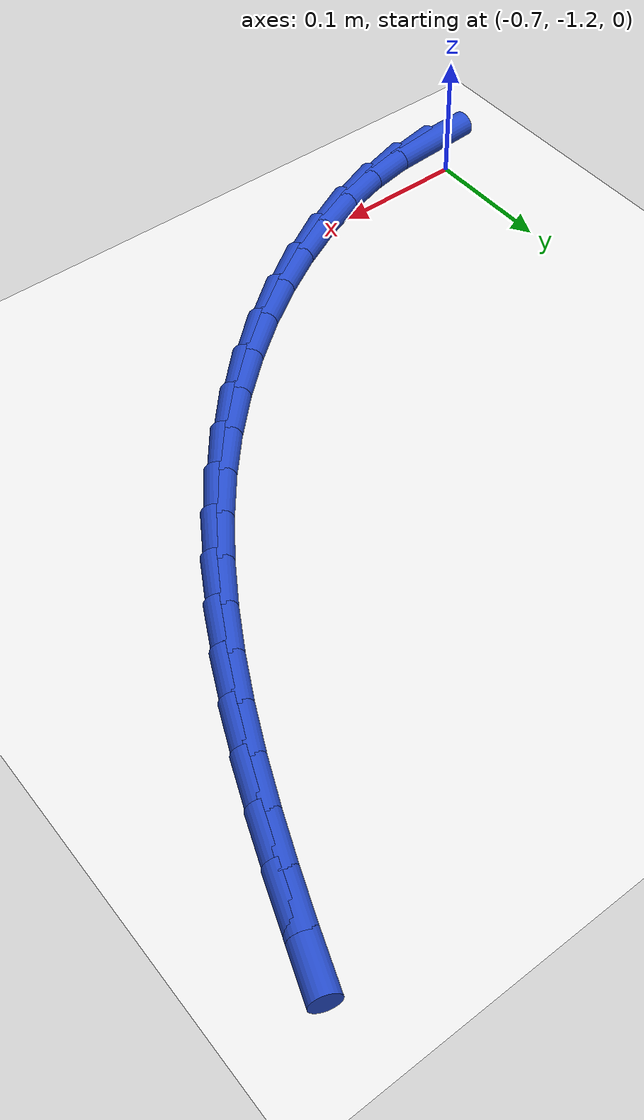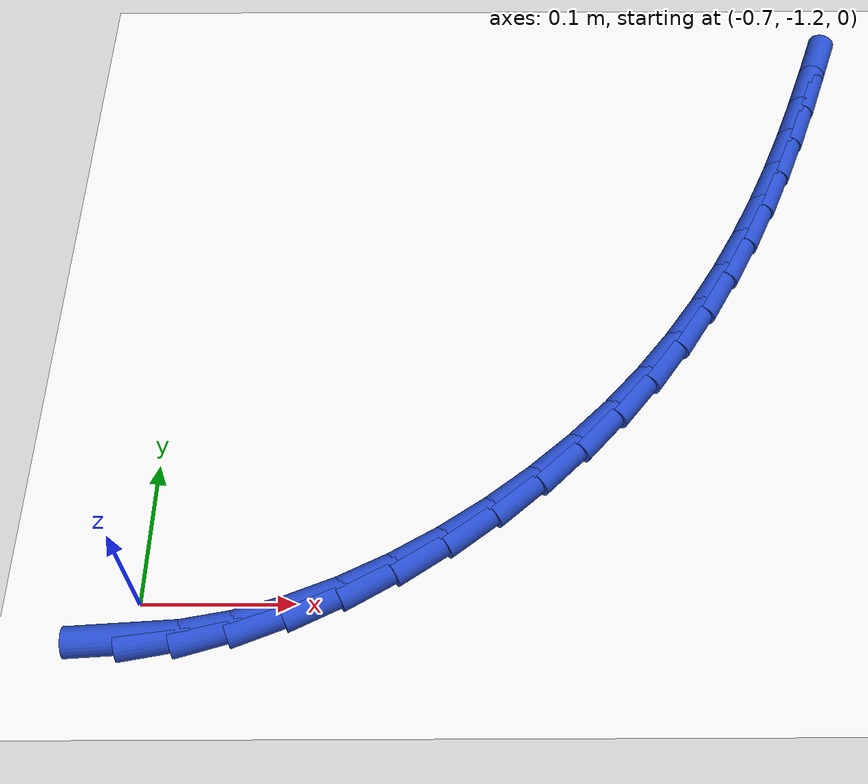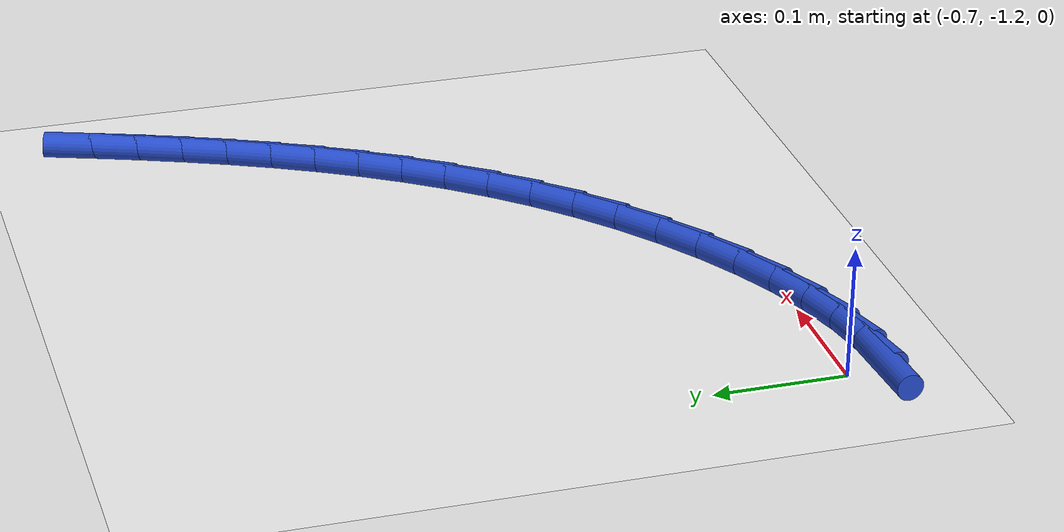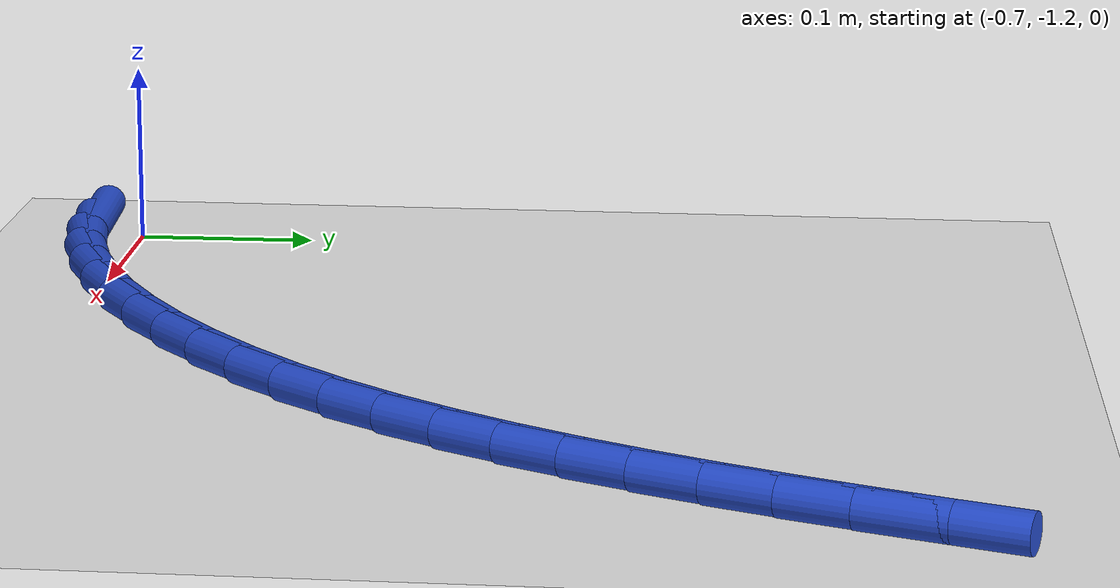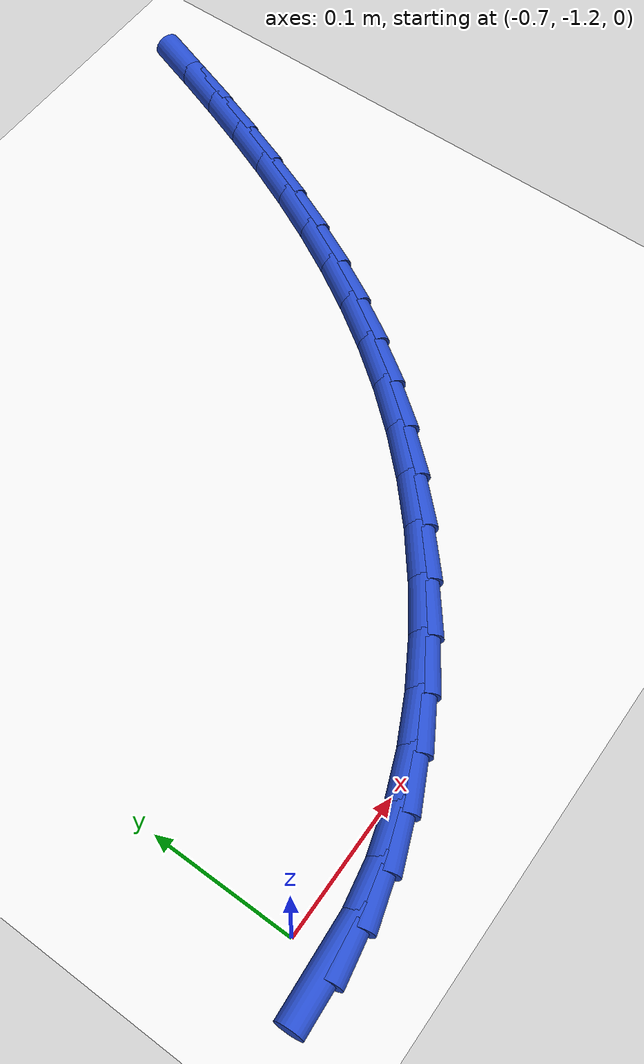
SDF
<sdf version="1.6">
 <world name="default">
  <model name="ground_plane">
   <static>1</static>
   <link name="link">
    <collision name="collision">
     <geometry><plane><normal>0 0 1</normal><size>100 100</size></plane></geometry>
     <surface><friction><ode><mu>100</mu><mu2>50</mu2></ode></friction></surface>
    </collision>
    <visual name="visual">
     <cast_shadows>0</cast_shadows>
     <geometry><plane><normal>0 0 1</normal><size>100 100</size></plane></geometry>
     <material>
      <script><uri>file://media/materials/scripts/gazebo.material</uri><name>Gazebo/WhiteGlow</name></script>
     </material>
    </visual>
   </link>
  </model>
  <model name="line">
   <link name="link_208">
    <pose>-0.7025477199311038 -1.2266026169287725 0.01 0 1.57 0.061631899637994154</pose>
    <collision name="collision">
     <geometry><cylinder><radius>0.01</radius><length>0.08</length></cylinder></geometry>
    </collision>
    <visual name="visual">
     <material>
      <script><name>Gazebo/Blue</name><uri>file://media/materials/scripts/gazebo.material</uri></script>
     </material>
     <geometry><cylinder><radius>0.01</radius><length>0.08</length></cylinder></geometry>
    </visual>
   </link>
   <link name="link_209">
    <pose>-0.6704820688924917 -1.2246238438568389 0.01 0 1.57 0.18043706414284058</pose>
    <collision name="collision">
     <geometry><cylinder><radius>0.01</radius><length>0.08</length></cylinder></geometry>
    </collision>
    <visual name="visual">
     <material>
      <script><name>Gazebo/Blue</name><uri>file://media/materials/scripts/gazebo.material</uri></script>
     </material>
     <geometry><cylinder><radius>0.01</radius><length>0.08</length></cylinder></geometry>
    </visual>
   </link>
   <link name="link_210">
    <pose>-0.6377941959364829 -1.21866088606351 0.01 0 1.57 0.28582933880075145</pose>
    <collision name="collision">
     <geometry><cylinder><radius>0.01</radius><length>0.08</length></cylinder></geometry>
    </collision>
    <visual name="visual">
     <material>
      <script><name>Gazebo/Blue</name><uri>file://media/materials/scripts/gazebo.material</uri></script>
     </material>
     <geometry><cylinder><radius>0.01</radius><length>0.08</length></cylinder></geometry>
    </visual>
   </link>
   <link name="link_211">
    <pose>-0.6047204045926995 -1.2089412810870517 0.01 0 1.57 0.377493633235697</pose>
    <collision name="collision">
     <geometry><cylinder><radius>0.01</radius><length>0.08</length></cylinder></geometry>
    </collision>
    <visual name="visual">
     <material>
      <script><name>Gazebo/Blue</name><uri>file://media/materials/scripts/gazebo.material</uri></script>
     </material>
     <geometry><cylinder><radius>0.01</radius><length>0.08</length></cylinder></geometry>
    </visual>
   </link>
   <link name="link_212">
    <pose>-0.5715992989605979 -1.1958084509336333 0.01 0 1.57 0.4584615154258041</pose>
    <collision name="collision">
     <geometry><cylinder><radius>0.01</radius><length>0.08</length></cylinder></geometry>
    </collision>
    <visual name="visual">
     <material>
      <script><name>Gazebo/Blue</name><uri>file://media/materials/scripts/gazebo.material</uri></script>
     </material>
     <geometry><cylinder><radius>0.01</radius><length>0.08</length></cylinder></geometry>
    </visual>
   </link>
   <link name="link_213">
    <pose>-0.5387694831396356 -1.1796058176094253 0.01 0 1.57 0.5314444745958207</pose>
    <collision name="collision">
     <geometry><cylinder><radius>0.01</radius><length>0.08</length></cylinder></geometry>
    </collision>
    <visual name="visual">
     <material>
      <script><name>Gazebo/Blue</name><uri>file://media/materials/scripts/gazebo.material</uri></script>
     </material>
     <geometry><cylinder><radius>0.01</radius><length>0.08</length></cylinder></geometry>
    </visual>
   </link>
   <link name="link_214">
    <pose>-0.5065695612292688 -1.160676803120598 0.01 0 1.57 0.5988083184248361</pose>
    <collision name="collision">
     <geometry><cylinder><radius>0.01</radius><length>0.08</length></cylinder></geometry>
    </collision>
    <visual name="visual">
     <material>
      <script><name>Gazebo/Blue</name><uri>file://media/materials/scripts/gazebo.material</uri></script>
     </material>
     <geometry><cylinder><radius>0.01</radius><length>0.08</length></cylinder></geometry>
    </visual>
   </link>
   <link name="link_215">
    <pose>-0.4753381373289547 -1.1393648294733216 0.01 0 1.57 0.6626452412975176</pose>
    <collision name="collision">
     <geometry><cylinder><radius>0.01</radius><length>0.08</length></cylinder></geometry>
    </collision>
    <visual name="visual">
     <material>
      <script><name>Gazebo/Blue</name><uri>file://media/materials/scripts/gazebo.material</uri></script>
     </material>
     <geometry><cylinder><radius>0.01</radius><length>0.08</length></cylinder></geometry>
    </visual>
   </link>
   <link name="link_216">
    <pose>-0.44541381553814985 -1.116013318673765 0.01 0 1.57 0.7248830299188872</pose>
    <collision name="collision">
     <geometry><cylinder><radius>0.01</radius><length>0.08</length></cylinder></geometry>
    </collision>
    <visual name="visual">
     <material>
      <script><name>Gazebo/Blue</name><uri>file://media/materials/scripts/gazebo.material</uri></script>
     </material>
     <geometry><cylinder><radius>0.01</radius><length>0.08</length></cylinder></geometry>
    </visual>
   </link>
   <link name="link_217">
    <pose>-0.4171351999563113 -1.0909656927280997 0.01 0 1.57 0.7873808064472755</pose>
    <collision name="collision">
     <geometry><cylinder><radius>0.01</radius><length>0.08</length></cylinder></geometry>
    </collision>
    <visual name="visual">
     <material>
      <script><name>Gazebo/Blue</name><uri>file://media/materials/scripts/gazebo.material</uri></script>
     </material>
     <geometry><cylinder><radius>0.01</radius><length>0.08</length></cylinder></geometry>
    </visual>
   </link>
   <link name="link_218">
    <pose>-0.39083772074572576 -1.0645637291967271 0.01 0 1.57 0.8499939414048233</pose>
    <collision name="collision">
     <geometry><cylinder><radius>0.01</radius><length>0.08</length></cylinder></geometry>
    </collision>
    <visual name="visual">
     <material>
      <script><name>Gazebo/Blue</name><uri>file://media/materials/scripts/gazebo.material</uri></script>
     </material>
     <geometry><cylinder><radius>0.01</radius><length>0.08</length></cylinder></geometry>
    </visual>
   </link>
   <link name="link_219">
    <pose>-0.3666688075893303 -1.0370518008787215 0.01 0 1.57 0.9098698965216069</pose>
    <collision name="collision">
     <geometry><cylinder><radius>0.01</radius><length>0.08</length></cylinder></geometry>
    </collision>
    <visual name="visual">
     <material>
      <script><name>Gazebo/Blue</name><uri>file://media/materials/scripts/gazebo.material</uri></script>
     </material>
     <geometry><cylinder><radius>0.01</radius><length>0.08</length></cylinder></geometry>
    </visual>
   </link>
   <link name="link_220">
    <pose>-0.3444858814210115 -1.0085240243978393 0.01 0 1.57 0.9660025195109126</pose>
    <collision name="collision">
     <geometry><cylinder><radius>0.01</radius><length>0.08</length></cylinder></geometry>
    </collision>
    <visual name="visual">
     <material>
      <script><name>Gazebo/Blue</name><uri>file://media/materials/scripts/gazebo.material</uri></script>
     </material>
     <geometry><cylinder><radius>0.01</radius><length>0.08</length></cylinder></geometry>
    </visual>
   </link>
   <link name="link_221">
    <pose>-0.3241215781713079 -0.9790616750417728 0.01 0 1.57 1.0177724759989397</pose>
    <collision name="collision">
     <geometry><cylinder><radius>0.01</radius><length>0.08</length></cylinder></geometry>
    </collision>
    <visual name="visual">
     <material>
      <script><name>Gazebo/Blue</name><uri>file://media/materials/scripts/gazebo.material</uri></script>
     </material>
     <geometry><cylinder><radius>0.01</radius><length>0.08</length></cylinder></geometry>
    </visual>
   </link>
   <link name="link_222">
    <pose>-0.3054085337707584 -0.9487460280982145 0.01 0 1.57 1.0647253265542655</pose>
    <collision name="collision">
     <geometry><cylinder><radius>0.01</radius><length>0.08</length></cylinder></geometry>
    </collision>
    <visual name="visual">
     <material>
      <script><name>Gazebo/Blue</name><uri>file://media/materials/scripts/gazebo.material</uri></script>
     </material>
     <geometry><cylinder><radius>0.01</radius><length>0.08</length></cylinder></geometry>
    </visual>
   </link>
   <link name="link_223">
    <pose>-0.2881793841499017 -0.9176583588548562 0.01 0 1.57 1.1065595409528064</pose>
    <collision name="collision">
     <geometry><cylinder><radius>0.01</radius><length>0.08</length></cylinder></geometry>
    </collision>
    <visual name="visual">
     <material>
      <script><name>Gazebo/Blue</name><uri>file://media/materials/scripts/gazebo.material</uri></script>
     </material>
     <geometry><cylinder><radius>0.01</radius><length>0.08</length></cylinder></geometry>
    </visual>
   </link>
   <link name="link_224">
    <pose>-0.2722667652392765 -0.8858799425993907 0.01 0 1.57 1.1431026817902288</pose>
    <collision name="collision">
     <geometry><cylinder><radius>0.01</radius><length>0.08</length></cylinder></geometry>
    </collision>
    <visual name="visual">
     <material>
      <script><name>Gazebo/Blue</name><uri>file://media/materials/scripts/gazebo.material</uri></script>
     </material>
     <geometry><cylinder><radius>0.01</radius><length>0.08</length></cylinder></geometry>
    </visual>
   </link>
   <link name="link_225">
    <pose>-0.25750331296942186 -0.8534920546195103 0.01 0 1.57 1.1742820526769358</pose>
    <collision name="collision">
     <geometry><cylinder><radius>0.01</radius><length>0.08</length></cylinder></geometry>
    </collision>
    <visual name="visual">
     <material>
      <script><name>Gazebo/Blue</name><uri>file://media/materials/scripts/gazebo.material</uri></script>
     </material>
     <geometry><cylinder><radius>0.01</radius><length>0.08</length></cylinder></geometry>
    </visual>
   </link>
   <link name="link_226">
    <pose>-0.2437216632708762 -0.8205759702029071 0.01 0 1.57 1.2000948782080498</pose>
    <collision name="collision">
     <geometry><cylinder><radius>0.01</radius><length>0.08</length></cylinder></geometry>
    </collision>
    <visual name="visual">
     <material>
      <script><name>Gazebo/Blue</name><uri>file://media/materials/scripts/gazebo.material</uri></script>
     </material>
     <geometry><cylinder><radius>0.01</radius><length>0.08</length></cylinder></geometry>
    </visual>
   </link>
   <link name="link_227">
    <pose>-0.23075445207417838 -0.7872129646372731 0.01 0 1.57 1.2205813439856306</pose>
    <collision name="collision">
     <geometry><cylinder><radius>0.01</radius><length>0.08</length></cylinder></geometry>
    </collision>
    <visual name="visual">
     <material>
      <script><name>Gazebo/Blue</name><uri>file://media/materials/scripts/gazebo.material</uri></script>
     </material>
     <geometry><cylinder><radius>0.01</radius><length>0.08</length></cylinder></geometry>
    </visual>
   </link>
   <link name="link_228">
    <pose>-0.21843431530986723 -0.753484313210301 0.01 0 1.57 1.2358022200071048</pose>
    <collision name="collision">
     <geometry><cylinder><radius>0.01</radius><length>0.08</length></cylinder></geometry>
    </collision>
    <visual name="visual">
     <material>
      <script><name>Gazebo/Blue</name><uri>file://media/materials/scripts/gazebo.material</uri></script>
     </material>
     <geometry><cylinder><radius>0.01</radius><length>0.08</length></cylinder></geometry>
    </visual>
   </link>
  </model>
 </world>
</sdf>
